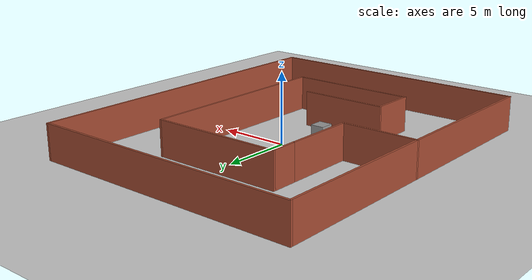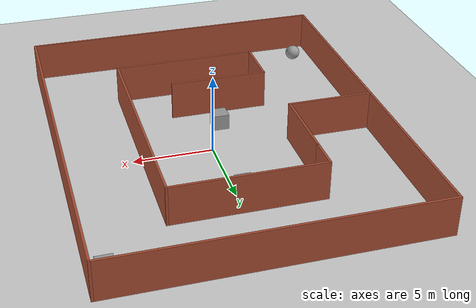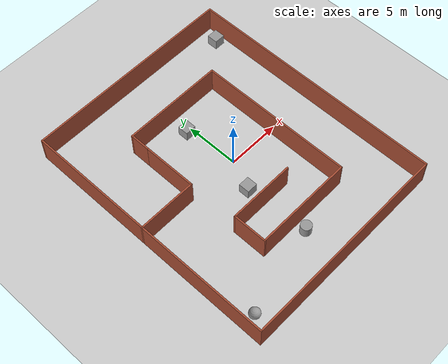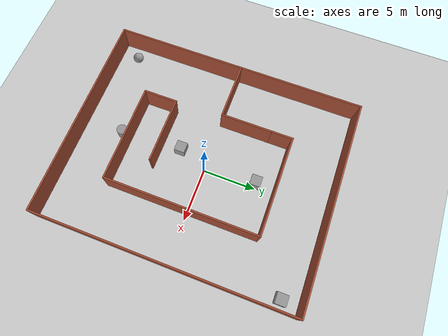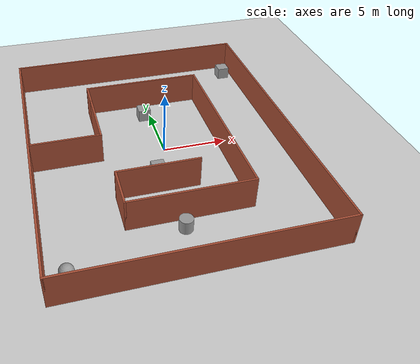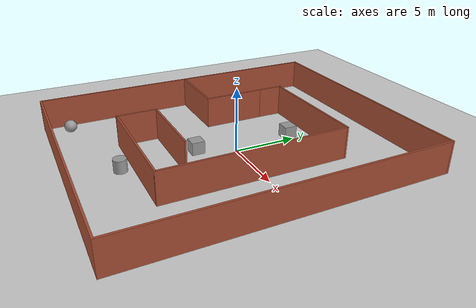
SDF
<sdf version="1.6">
 <world name="default">
  <light name="sun" type="directional">
   <pose>0 0 10 0 -0 0</pose>
   <diffuse>0.8 0.8 0.8 1</diffuse>
   <specular>0.2 0.2 0.2 1</specular>
   <attenuation>
    <range>1000</range>
    <constant>0.9</constant>
    <linear>0.01</linear>
    <quadratic>0.001</quadratic>
   </attenuation>
   <direction>-0.5 0.1 -0.9</direction>
  </light>
  <model name="ground_plane">
   <static>1</static>
   <link name="link">
    <collision name="collision">
     <geometry><plane><normal>0 0 1</normal><size>100 100</size></plane></geometry>
     <surface><friction><ode><mu>100</mu><mu2>50</mu2></ode></friction></surface>
    </collision>
    <visual name="visual">
     <cast_shadows>0</cast_shadows>
     <geometry><plane><normal>0 0 1</normal><size>100 100</size></plane></geometry>
     <material>
      <script><uri>file://media/materials/scripts/gazebo.material</uri><name>Gazebo/Grey</name></script>
     </material>
    </visual>
   </link>
  </model>
  <gravity>0 0 -9.8</gravity>
  <magnetic_field>6e-06 2.3e-05 -4.2e-05</magnetic_field>
  <atmosphere type="adiabatic"/>
  <physics name="default_physics" default="0" type="ode">
   <max_step_size>0.001</max_step_size>
   <real_time_factor>1</real_time_factor>
   <real_time_update_rate>1000</real_time_update_rate>
  </physics>
  <scene><ambient>0.4 0.4 0.4 1</ambient><background>0.7 0.7 0.7 1</background><shadows>1</shadows></scene>
  <spherical_coordinates>
   <surface_model>EARTH_WGS84</surface_model>
   <latitude_deg>0</latitude_deg>
   <longitude_deg>0</longitude_deg>
   <elevation>0</elevation>
   <heading_deg>0</heading_deg>
  </spherical_coordinates>
  <model name="maze">
   <pose>-0.490001 -0.390042 0 0 -0 0</pose>
   <link name="Wall_0">
    <collision name="Wall_0_Collision">
     <geometry><box><size>5 0.15 2.5</size></box></geometry>
     <pose>0 0 1.25 0 -0 0</pose>
    </collision>
    <visual name="Wall_0_Visual">
     <pose>0 0 1.25 0 -0 0</pose>
     <geometry><box><size>5 0.15 2.5</size></box></geometry>
     <material>
      <script><uri>file://media/materials/scripts/gazebo.material</uri><name>Gazebo/Bricks</name></script>
      <ambient>1 1 1 1</ambient>
     </material>
     <meta><layer>0</layer></meta>
    </visual>
    <pose>-4.45 2.725 0 0 -0 1.5708</pose>
   </link>
   <link name="Wall_10">
    <collision name="Wall_10_Collision">
     <geometry><box><size>5.5 0.15 2.5</size></box></geometry>
     <pose>0 0 1.25 0 -0 0</pose>
    </collision>
    <visual name="Wall_10_Visual">
     <pose>0 0 1.25 0 -0 0</pose>
     <geometry><box><size>5.5 0.15 2.5</size></box></geometry>
     <material>
      <script><uri>file://media/materials/scripts/gazebo.material</uri><name>Gazebo/Bricks</name></script>
      <ambient>1 1 1 1</ambient>
     </material>
     <meta><layer>0</layer></meta>
    </visual>
    <pose>-7.125 0.3 0 0 -0 3.14159</pose>
   </link>
   <link name="Wall_11">
    <collision name="Wall_11_Collision">
     <geometry><box><size>12.5 0.15 2.5</size></box></geometry>
     <pose>0 0 1.25 0 -0 0</pose>
    </collision>
    <visual name="Wall_11_Visual">
     <pose>0 0 1.25 0 -0 0</pose>
     <geometry><box><size>12.5 0.15 2.5</size></box></geometry>
     <material>
      <script><uri>file://media/materials/scripts/gazebo.material</uri><name>Gazebo/Bricks</name></script>
      <ambient>1 1 1 1</ambient>
     </material>
     <meta><layer>0</layer></meta>
    </visual>
    <pose>-9.8 -5.875 0 0 -0 -1.5708</pose>
   </link>
   <link name="Wall_12">
    <collision name="Wall_12_Collision">
     <geometry><box><size>19.75 0.15 2.5</size></box></geometry>
     <pose>0 0 1.25 0 -0 0</pose>
    </collision>
    <visual name="Wall_12_Visual">
     <pose>0 0 1.25 0 -0 0</pose>
     <geometry><box><size>19.75 0.15 2.5</size></box></geometry>
     <material>
      <script><uri>file://media/materials/scripts/gazebo.material</uri><name>Gazebo/Bricks</name></script>
      <ambient>1 1 1 1</ambient>
     </material>
     <meta><layer>0</layer></meta>
    </visual>
    <pose>-1e-06 -12.05 0 0 -0 0</pose>
   </link>
   <link name="Wall_13">
    <collision name="Wall_13_Collision">
     <geometry><box><size>24.25 0.15 2.5</size></box></geometry>
     <pose>0 0 1.25 0 -0 0</pose>
    </collision>
    <visual name="Wall_13_Visual">
     <pose>0 0 1.25 0 -0 0</pose>
     <geometry><box><size>24.25 0.15 2.5</size></box></geometry>
     <material>
      <script><uri>file://media/materials/scripts/gazebo.material</uri><name>Gazebo/Bricks</name></script>
      <ambient>1 1 1 1</ambient>
     </material>
     <meta><layer>0</layer></meta>
    </visual>
    <pose>9.8 0 0 0 -0 1.5708</pose>
   </link>
   <link name="Wall_17">
    <collision name="Wall_17_Collision">
     <geometry><box><size>9.5 0.15 2.5</size></box></geometry>
     <pose>0 0 1.25 0 -0 0</pose>
    </collision>
    <visual name="Wall_17_Visual">
     <pose>0 0 1.25 0 -0 0</pose>
     <geometry><box><size>9.5 0.15 2.5</size></box></geometry>
     <material>
      <script><uri>file://media/materials/scripts/gazebo.material</uri><name>Gazebo/Bricks</name></script>
      <ambient>1 1 1 1</ambient>
     </material>
     <meta><layer>0</layer></meta>
    </visual>
    <pose>0.224999 7.05 0 0 -0 3.14159</pose>
   </link>
   <link name="Wall_18">
    <collision name="Wall_18_Collision">
     <geometry><box><size>2.05 0.15 2.5</size></box></geometry>
     <pose>0 0 1.25 0 -0 0</pose>
    </collision>
    <visual name="Wall_18_Visual">
     <pose>0 0 1.25 0 -0 0</pose>
     <geometry><box><size>2.05 0.15 2.5</size></box></geometry>
     <material>
      <script><uri>file://media/materials/scripts/gazebo.material</uri><name>Gazebo/Bricks</name></script>
      <ambient>1 1 1 1</ambient>
     </material>
     <meta><layer>0</layer></meta>
    </visual>
    <pose>-4.45 6.1 0 0 -0 -1.5708</pose>
   </link>
   <link name="Wall_20">
    <collision name="Wall_20_Collision">
     <geometry><box><size>19.75 0.15 2.5</size></box></geometry>
     <pose>0 0 1.25 0 -0 0</pose>
    </collision>
    <visual name="Wall_20_Visual">
     <pose>0 0 1.25 0 -0 0</pose>
     <geometry><box><size>19.75 0.15 2.5</size></box></geometry>
     <material>
      <script><uri>file://media/materials/scripts/gazebo.material</uri><name>Gazebo/Bricks</name></script>
      <ambient>1 1 1 1</ambient>
     </material>
     <meta><layer>0</layer></meta>
    </visual>
    <pose>-1e-06 12.05 0 0 -0 3.14159</pose>
   </link>
   <link name="Wall_21">
    <collision name="Wall_21_Collision">
     <geometry><box><size>11.75 0.15 2.5</size></box></geometry>
     <pose>0 0 1.25 0 -0 0</pose>
    </collision>
    <visual name="Wall_21_Visual">
     <pose>0 0 1.25 0 -0 0</pose>
     <geometry><box><size>11.75 0.15 2.5</size></box></geometry>
     <material>
      <script><uri>file://media/materials/scripts/gazebo.material</uri><name>Gazebo/Bricks</name></script>
      <ambient>1 1 1 1</ambient>
     </material>
     <meta><layer>0</layer></meta>
    </visual>
    <pose>-9.8 6.25 0 0 -0 -1.5708</pose>
   </link>
   <link name="Wall_3">
    <collision name="Wall_3_Collision">
     <geometry><box><size>6.25 0.15 2.5</size></box></geometry>
     <pose>0 0 1.25 0 -0 0</pose>
    </collision>
    <visual name="Wall_3_Visual">
     <pose>0 0 1.25 0 -0 0</pose>
     <geometry><box><size>6.25 0.15 2.5</size></box></geometry>
     <material>
      <script><uri>file://media/materials/scripts/gazebo.material</uri><name>Gazebo/Bricks</name></script>
      <ambient>1 1 1 1</ambient>
     </material>
     <meta><layer>0</layer></meta>
    </visual>
    <pose>-1.15 -4.2 0 0 -0 3.14159</pose>
   </link>
   <link name="Wall_4">
    <collision name="Wall_4_Collision">
     <geometry><box><size>3.25 0.15 2.5</size></box></geometry>
     <pose>0 0 1.25 0 -0 0</pose>
    </collision>
    <visual name="Wall_4_Visual">
     <pose>0 0 1.25 0 -0 0</pose>
     <geometry><box><size>3.25 0.15 2.5</size></box></geometry>
     <material>
      <script><uri>file://media/materials/scripts/gazebo.material</uri><name>Gazebo/Bricks</name></script>
      <ambient>1 1 1 1</ambient>
     </material>
     <meta><layer>0</layer></meta>
    </visual>
    <pose>-4.2 -5.75 0 0 -0 -1.5708</pose>
   </link>
   <link name="Wall_5">
    <collision name="Wall_5_Collision">
     <geometry><box><size>9.25 0.15 2.5</size></box></geometry>
     <pose>0 0 1.25 0 -0 0</pose>
    </collision>
    <visual name="Wall_5_Visual">
     <pose>0 0 1.25 0 -0 0</pose>
     <geometry><box><size>9.25 0.15 2.5</size></box></geometry>
     <material>
      <script><uri>file://media/materials/scripts/gazebo.material</uri><name>Gazebo/Bricks</name></script>
      <ambient>1 1 1 1</ambient>
     </material>
     <meta><layer>0</layer></meta>
    </visual>
    <pose>0.349999 -7.3 0 0 -0 0</pose>
   </link>
   <link name="Wall_6">
    <collision name="Wall_6_Collision">
     <geometry><box><size>14.5 0.15 2.5</size></box></geometry>
     <pose>0 0 1.25 0 -0 0</pose>
    </collision>
    <visual name="Wall_6_Visual">
     <pose>0 0 1.25 0 -0 0</pose>
     <geometry><box><size>14.5 0.15 2.5</size></box></geometry>
     <material>
      <script><uri>file://media/materials/scripts/gazebo.material</uri><name>Gazebo/Bricks</name></script>
      <ambient>1 1 1 1</ambient>
     </material>
     <meta><layer>0</layer></meta>
    </visual>
    <pose>4.9 -0.125 0 0 -0 1.5708</pose>
   </link>
   <static>1</static>
  </model>
  <model name="unit_box">
   <pose>-0.549813 4.85184 0.5 0 -0 0</pose>
   <link name="link">
    <inertial>
     <mass>1</mass>
     <inertia>
      <ixx>0.166667</ixx>
      <ixy>0</ixy>
      <ixz>0</ixz>
      <iyy>0.166667</iyy>
      <iyz>0</iyz>
      <izz>0.166667</izz>
     </inertia>
    </inertial>
    <collision name="collision"><geometry><box><size>1 1 1</size></box></geometry></collision>
    <visual name="visual">
     <geometry><box><size>1 1 1</size></box></geometry>
     <material>
      <script><name>Gazebo/Grey</name><uri>file://media/materials/scripts/gazebo.material</uri></script>
     </material>
    </visual>
   </link>
  </model>
  <model name="unit_sphere">
   <pose>-8.92056 -10.5971 0.5 0 -0 0</pose>
   <link name="link">
    <inertial>
     <mass>1</mass>
     <inertia><ixx>0.1</ixx><ixy>0</ixy><ixz>0</ixz><iyy>0.1</iyy><iyz>0</iyz><izz>0.1</izz></inertia>
    </inertial>
    <collision name="collision"><geometry><sphere><radius>0.5</radius></sphere></geometry></collision>
    <visual name="visual">
     <geometry><sphere><radius>0.5</radius></sphere></geometry>
     <material>
      <script><name>Gazebo/Grey</name><uri>file://media/materials/scripts/gazebo.material</uri></script>
     </material>
    </visual>
   </link>
  </model>
  <model name="unit_cylinder">
   <pose>-0.811219 -8.63646 0.5 0 -0 0</pose>
   <link name="link">
    <inertial>
     <mass>1</mass>
     <inertia><ixx>0.145833</ixx><ixy>0</ixy><ixz>0</ixz><iyy>0.145833</iyy><iyz>0</iyz><izz>0.125</izz></inertia>
    </inertial>
    <collision name="collision">
     <geometry><cylinder><radius>0.5</radius><length>1</length></cylinder></geometry>
    </collision>
    <visual name="visual">
     <geometry><cylinder><radius>0.5</radius><length>1</length></cylinder></geometry>
     <material>
      <script><name>Gazebo/Grey</name><uri>file://media/materials/scripts/gazebo.material</uri></script>
     </material>
    </visual>
   </link>
  </model>
  <model name="unit_box_0">
   <pose>8.34883 10.0035 0.5 0 -0 0</pose>
   <link name="link">
    <inertial>
     <mass>1</mass>
     <inertia>
      <ixx>0.166667</ixx>
      <ixy>0</ixy>
      <ixz>0</ixz>
      <iyy>0.166667</iyy>
      <iyz>0</iyz>
      <izz>0.166667</izz>
     </inertia>
    </inertial>
    <collision name="collision"><geometry><box><size>1 1 1</size></box></geometry></collision>
    <visual name="visual">
     <geometry><box><size>1 1 1</size></box></geometry>
     <material>
      <script><name>Gazebo/Grey</name><uri>file://media/materials/scripts/gazebo.material</uri></script>
     </material>
    </visual>
   </link>
  </model>
  <model name="unit_box_1">
   <pose>-1.19744 -2.76083 0.5 0 -0 0</pose>
   <link name="link">
    <inertial>
     <mass>1</mass>
     <inertia>
      <ixx>0.166667</ixx>
      <ixy>0</ixy>
      <ixz>0</ixz>
      <iyy>0.166667</iyy>
      <iyz>0</iyz>
      <izz>0.166667</izz>
     </inertia>
    </inertial>
    <collision name="collision"><geometry><box><size>1 1 1</size></box></geometry></collision>
    <visual name="visual">
     <geometry><box><size>1 1 1</size></box></geometry>
     <material>
      <script><name>Gazebo/Grey</name><uri>file://media/materials/scripts/gazebo.material</uri></script>
     </material>
    </visual>
   </link>
  </model>
 </world>
</sdf>
